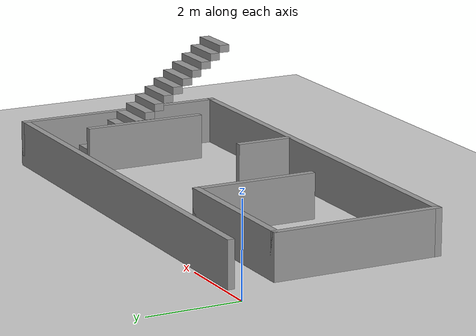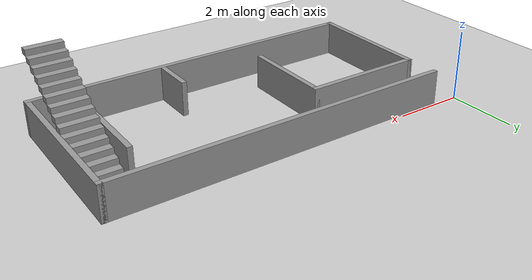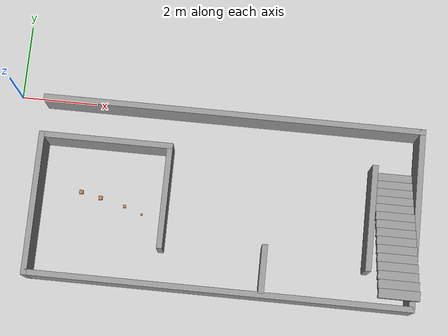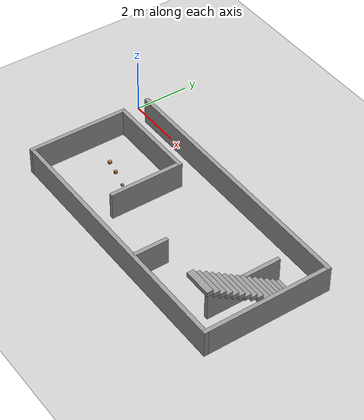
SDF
<sdf version="1.7">
 <world name="default">
  <light name="sun" type="directional">
   <pose>0 0 10 0 -0 0</pose>
   <diffuse>0.8 0.8 0.8 1</diffuse>
   <specular>0.2 0.2 0.2 1</specular>
   <attenuation>
    <range>1000</range>
    <constant>0.9</constant>
    <linear>0.01</linear>
    <quadratic>0.001</quadratic>
   </attenuation>
   <direction>-0.5 0.1 -0.9</direction>
   <spot><inner_angle>0</inner_angle><outer_angle>0</outer_angle><falloff>0</falloff></spot>
  </light>
  <model name="ground_plane">
   <static>1</static>
   <link name="link">
    <collision name="collision">
     <geometry><plane><normal>0 0 1</normal><size>100 100</size></plane></geometry>
     <surface>
      <contact><collide_bitmask>65535</collide_bitmask></contact>
      <friction><ode><mu>100</mu><mu2>50</mu2></ode></friction>
     </surface>
    </collision>
    <visual name="visual">
     <cast_shadows>0</cast_shadows>
     <geometry><plane><normal>0 0 1</normal><size>100 100</size></plane></geometry>
     <material>
      <script><uri>file://media/materials/scripts/gazebo.material</uri><name>Gazebo/Grey</name></script>
     </material>
    </visual>
   </link>
  </model>
  <gravity>0 0 -9.8</gravity>
  <magnetic_field>6e-06 2.3e-05 -4.2e-05</magnetic_field>
  <atmosphere type="adiabatic"/>
  <physics type="ode">
   <max_step_size>0.001</max_step_size>
   <real_time_factor>1</real_time_factor>
   <real_time_update_rate>1000</real_time_update_rate>
  </physics>
  <scene><ambient>0.4 0.4 0.4 1</ambient><background>0.7 0.7 0.7 1</background><shadows>1</shadows></scene>
  <spherical_coordinates>
   <surface_model>EARTH_WGS84</surface_model>
   <latitude_deg>0</latitude_deg>
   <longitude_deg>0</longitude_deg>
   <elevation>0</elevation>
   <heading_deg>0</heading_deg>
  </spherical_coordinates>
  <model name="building">
   <pose>5.72937 -2.10961 0 0 -0 0</pose>
   <link name="Stairs_0">
    <visual name="Stairs_0_Visual_0">
     <pose>4.35858 0.835559 0.083333 0 -0 0</pose>
     <geometry><box><size>1 0.233333 0.166667</size></box></geometry>
     <material>
      <script><uri>file://media/materials/scripts/gazebo.material</uri><name>Gazebo/Grey</name></script>
      <ambient>1 1 1 1</ambient>
     </material>
     <meta><layer>0</layer></meta>
    </visual>
    <collision name="Stairs_0_Collision_0">
     <geometry><box><size>1 0.233333 0.166667</size></box></geometry>
     <pose>4.35858 0.835559 0.083333 0 -0 0</pose>
    </collision>
    <visual name="Stairs_0_Visual_1">
     <pose>4.35858 0.602225 0.25 0 -0 0</pose>
     <geometry><box><size>1 0.233333 0.166667</size></box></geometry>
     <material>
      <script><uri>file://media/materials/scripts/gazebo.material</uri><name>Gazebo/Grey</name></script>
      <ambient>1 1 1 1</ambient>
     </material>
     <meta><layer>0</layer></meta>
    </visual>
    <collision name="Stairs_0_Collision_1">
     <geometry><box><size>1 0.233333 0.166667</size></box></geometry>
     <pose>4.35858 0.602225 0.25 0 -0 0</pose>
    </collision>
    <visual name="Stairs_0_Visual_2">
     <pose>4.35858 0.368892 0.416667 0 -0 0</pose>
     <geometry><box><size>1 0.233333 0.166667</size></box></geometry>
     <material>
      <script><uri>file://media/materials/scripts/gazebo.material</uri><name>Gazebo/Grey</name></script>
      <ambient>1 1 1 1</ambient>
     </material>
     <meta><layer>0</layer></meta>
    </visual>
    <collision name="Stairs_0_Collision_2">
     <geometry><box><size>1 0.233333 0.166667</size></box></geometry>
     <pose>4.35858 0.368892 0.416667 0 -0 0</pose>
    </collision>
    <visual name="Stairs_0_Visual_3">
     <pose>4.35858 0.135559 0.583333 0 -0 0</pose>
     <geometry><box><size>1 0.233333 0.166667</size></box></geometry>
     <material>
      <script><uri>file://media/materials/scripts/gazebo.material</uri><name>Gazebo/Grey</name></script>
      <ambient>1 1 1 1</ambient>
     </material>
     <meta><layer>0</layer></meta>
    </visual>
    <collision name="Stairs_0_Collision_3">
     <geometry><box><size>1 0.233333 0.166667</size></box></geometry>
     <pose>4.35858 0.135559 0.583333 0 -0 0</pose>
    </collision>
    <visual name="Stairs_0_Visual_4">
     <pose>4.35858 -0.097775 0.75 0 -0 0</pose>
     <geometry><box><size>1 0.233333 0.166667</size></box></geometry>
     <material>
      <script><uri>file://media/materials/scripts/gazebo.material</uri><name>Gazebo/Grey</name></script>
      <ambient>1 1 1 1</ambient>
     </material>
     <meta><layer>0</layer></meta>
    </visual>
    <collision name="Stairs_0_Collision_4">
     <geometry><box><size>1 0.233333 0.166667</size></box></geometry>
     <pose>4.35858 -0.097775 0.75 0 -0 0</pose>
    </collision>
    <visual name="Stairs_0_Visual_5">
     <pose>4.35858 -0.331108 0.916667 0 -0 0</pose>
     <geometry><box><size>1 0.233333 0.166667</size></box></geometry>
     <material>
      <script><uri>file://media/materials/scripts/gazebo.material</uri><name>Gazebo/Grey</name></script>
      <ambient>1 1 1 1</ambient>
     </material>
     <meta><layer>0</layer></meta>
    </visual>
    <collision name="Stairs_0_Collision_5">
     <geometry><box><size>1 0.233333 0.166667</size></box></geometry>
     <pose>4.35858 -0.331108 0.916667 0 -0 0</pose>
    </collision>
    <visual name="Stairs_0_Visual_6">
     <pose>4.35858 -0.564441 1.08333 0 -0 0</pose>
     <geometry><box><size>1 0.233333 0.166667</size></box></geometry>
     <material>
      <script><uri>file://media/materials/scripts/gazebo.material</uri><name>Gazebo/Grey</name></script>
      <ambient>1 1 1 1</ambient>
     </material>
     <meta><layer>0</layer></meta>
    </visual>
    <collision name="Stairs_0_Collision_6">
     <geometry><box><size>1 0.233333 0.166667</size></box></geometry>
     <pose>4.35858 -0.564441 1.08333 0 -0 0</pose>
    </collision>
    <visual name="Stairs_0_Visual_7">
     <pose>4.35858 -0.797775 1.25 0 -0 0</pose>
     <geometry><box><size>1 0.233333 0.166667</size></box></geometry>
     <material>
      <script><uri>file://media/materials/scripts/gazebo.material</uri><name>Gazebo/Grey</name></script>
      <ambient>1 1 1 1</ambient>
     </material>
     <meta><layer>0</layer></meta>
    </visual>
    <collision name="Stairs_0_Collision_7">
     <geometry><box><size>1 0.233333 0.166667</size></box></geometry>
     <pose>4.35858 -0.797775 1.25 0 -0 0</pose>
    </collision>
    <visual name="Stairs_0_Visual_8">
     <pose>4.35858 -1.03111 1.41667 0 -0 0</pose>
     <geometry><box><size>1 0.233333 0.166667</size></box></geometry>
     <material>
      <script><uri>file://media/materials/scripts/gazebo.material</uri><name>Gazebo/Grey</name></script>
      <ambient>1 1 1 1</ambient>
     </material>
     <meta><layer>0</layer></meta>
    </visual>
    <collision name="Stairs_0_Collision_8">
     <geometry><box><size>1 0.233333 0.166667</size></box></geometry>
     <pose>4.35858 -1.03111 1.41667 0 -0 0</pose>
    </collision>
    <visual name="Stairs_0_Visual_9">
     <pose>4.35858 -1.26444 1.58333 0 -0 0</pose>
     <geometry><box><size>1 0.233333 0.166667</size></box></geometry>
     <material>
      <script><uri>file://media/materials/scripts/gazebo.material</uri><name>Gazebo/Grey</name></script>
      <ambient>1 1 1 1</ambient>
     </material>
     <meta><layer>0</layer></meta>
    </visual>
    <collision name="Stairs_0_Collision_9">
     <geometry><box><size>1 0.233333 0.166667</size></box></geometry>
     <pose>4.35858 -1.26444 1.58333 0 -0 0</pose>
    </collision>
    <visual name="Stairs_0_Visual_10">
     <pose>4.35858 -1.49778 1.75 0 -0 0</pose>
     <geometry><box><size>1 0.233333 0.166667</size></box></geometry>
     <material>
      <script><uri>file://media/materials/scripts/gazebo.material</uri><name>Gazebo/Grey</name></script>
      <ambient>1 1 1 1</ambient>
     </material>
     <meta><layer>0</layer></meta>
    </visual>
    <collision name="Stairs_0_Collision_10">
     <geometry><box><size>1 0.233333 0.166667</size></box></geometry>
     <pose>4.35858 -1.49778 1.75 0 -0 0</pose>
    </collision>
    <visual name="Stairs_0_Visual_11">
     <pose>4.35858 -1.73111 1.91667 0 -0 0</pose>
     <geometry><box><size>1 0.233333 0.166667</size></box></geometry>
     <material>
      <script><uri>file://media/materials/scripts/gazebo.material</uri><name>Gazebo/Grey</name></script>
      <ambient>1 1 1 1</ambient>
     </material>
     <meta><layer>0</layer></meta>
    </visual>
    <collision name="Stairs_0_Collision_11">
     <geometry><box><size>1 0.233333 0.166667</size></box></geometry>
     <pose>4.35858 -1.73111 1.91667 0 -0 0</pose>
    </collision>
    <visual name="Stairs_0_Visual_12">
     <pose>4.35858 -1.96444 2.08333 0 -0 0</pose>
     <geometry><box><size>1 0.233333 0.166667</size></box></geometry>
     <material>
      <script><uri>file://media/materials/scripts/gazebo.material</uri><name>Gazebo/Grey</name></script>
      <ambient>1 1 1 1</ambient>
     </material>
     <meta><layer>0</layer></meta>
    </visual>
    <collision name="Stairs_0_Collision_12">
     <geometry><box><size>1 0.233333 0.166667</size></box></geometry>
     <pose>4.35858 -1.96444 2.08333 0 -0 0</pose>
    </collision>
    <visual name="Stairs_0_Visual_13">
     <pose>4.35858 -2.19778 2.25 0 -0 0</pose>
     <geometry><box><size>1 0.233333 0.166667</size></box></geometry>
     <material>
      <script><uri>file://media/materials/scripts/gazebo.material</uri><name>Gazebo/Grey</name></script>
      <ambient>1 1 1 1</ambient>
     </material>
     <meta><layer>0</layer></meta>
    </visual>
    <collision name="Stairs_0_Collision_13">
     <geometry><box><size>1 0.233333 0.166667</size></box></geometry>
     <pose>4.35858 -2.19778 2.25 0 -0 0</pose>
    </collision>
    <visual name="Stairs_0_Visual_14">
     <pose>4.35858 -2.43111 2.41667 0 -0 0</pose>
     <geometry><box><size>1 0.233333 0.166667</size></box></geometry>
     <material>
      <script><uri>file://media/materials/scripts/gazebo.material</uri><name>Gazebo/Grey</name></script>
      <ambient>1 1 1 1</ambient>
     </material>
     <meta><layer>0</layer></meta>
    </visual>
    <collision name="Stairs_0_Collision_14">
     <geometry><box><size>1 0.233333 0.166667</size></box></geometry>
     <pose>4.35858 -2.43111 2.41667 0 -0 0</pose>
    </collision>
   </link>
   <link name="Wall_0">
    <collision name="Wall_0_Collision">
     <geometry><box><size>10 0.15 1</size></box></geometry>
     <pose>0 0 0.5 0 -0 0</pose>
    </collision>
    <visual name="Wall_0_Visual">
     <pose>0 0 0.5 0 -0 0</pose>
     <geometry><box><size>10 0.15 1</size></box></geometry>
     <material>
      <script><uri>file://media/materials/scripts/gazebo.material</uri><name>Gazebo/Grey</name></script>
      <ambient>1 1 1 1</ambient>
     </material>
     <meta><layer>0</layer></meta>
    </visual>
    <pose>-0 1.9665 0 0 -0 0</pose>
   </link>
   <link name="Wall_1">
    <collision name="Wall_1_Collision">
     <geometry><box><size>4.75 0.15 1</size></box></geometry>
     <pose>0 0 0.5 0 -0 0</pose>
    </collision>
    <visual name="Wall_1_Visual">
     <pose>0 0 0.5 0 -0 0</pose>
     <geometry><box><size>4.75 0.15 1</size></box></geometry>
     <material>
      <script><uri>file://media/materials/scripts/gazebo.material</uri><name>Gazebo/Grey</name></script>
      <ambient>1 1 1 1</ambient>
     </material>
     <meta><layer>0</layer></meta>
    </visual>
    <pose>4.925 -0.3335 0 0 -0 -1.5708</pose>
   </link>
   <link name="Wall_10">
    <collision name="Wall_10_Collision">
     <geometry><box><size>1.25 0.15 1</size></box></geometry>
     <pose>0 0 0.5 0 -0 0</pose>
    </collision>
    <visual name="Wall_10_Visual">
     <pose>0 0 0.5 0 -0 0</pose>
     <geometry><box><size>1.25 0.15 1</size></box></geometry>
     <material>
      <script><uri>file://media/materials/scripts/gazebo.material</uri><name>Gazebo/Grey</name></script>
      <ambient>1 1 1 1</ambient>
     </material>
     <meta><layer>0</layer></meta>
    </visual>
    <pose>1.105 -1.9675 0 0 -0 1.5708</pose>
   </link>
   <link name="Wall_2">
    <collision name="Wall_2_Collision">
     <geometry><box><size>10 0.15 1</size></box></geometry>
     <pose>0 0 0.5 0 -0 0</pose>
    </collision>
    <visual name="Wall_2_Visual">
     <pose>0 0 0.5 0 -0 0</pose>
     <geometry><box><size>10 0.15 1</size></box></geometry>
     <material>
      <script><uri>file://media/materials/scripts/gazebo.material</uri><name>Gazebo/Grey</name></script>
      <ambient>1 1 1 1</ambient>
     </material>
     <meta><layer>0</layer></meta>
    </visual>
    <pose>-0 -2.6335 0 0 -0 3.14159</pose>
   </link>
   <link name="Wall_3">
    <collision name="Wall_3_Collision">
     <geometry><box><size>3.75 0.15 1</size></box></geometry>
     <pose>0 0 0.5 0 -0 0</pose>
    </collision>
    <visual name="Wall_3_Visual">
     <pose>0 0 0.5 0 -0 0</pose>
     <geometry><box><size>3.75 0.15 1</size></box></geometry>
     <material>
      <script><uri>file://media/materials/scripts/gazebo.material</uri><name>Gazebo/Grey</name></script>
      <ambient>1 1 1 1</ambient>
     </material>
     <meta><layer>0</layer></meta>
    </visual>
    <pose>-4.925 -0.8335 0 0 -0 1.5708</pose>
   </link>
   <link name="Wall_4">
    <collision name="Wall_4_Collision">
     <geometry><box><size>3.5 0.15 1</size></box></geometry>
     <pose>0 0 0.5 0 -0 0</pose>
    </collision>
    <visual name="Wall_4_Visual">
     <pose>0 0 0.5 0 -0 0</pose>
     <geometry><box><size>3.5 0.15 1</size></box></geometry>
     <material>
      <script><uri>file://media/materials/scripts/gazebo.material</uri><name>Gazebo/Grey</name></script>
      <ambient>1 1 1 1</ambient>
     </material>
     <meta><layer>0</layer></meta>
    </visual>
    <pose>-3.25 0.9665 0 0 -0 0</pose>
   </link>
   <link name="Wall_5">
    <collision name="Wall_5_Collision">
     <geometry><box><size>2.75 0.15 1</size></box></geometry>
     <pose>0 0 0.5 0 -0 0</pose>
    </collision>
    <visual name="Wall_5_Visual">
     <pose>0 0 0.5 0 -0 0</pose>
     <geometry><box><size>2.75 0.15 1</size></box></geometry>
     <material>
      <script><uri>file://media/materials/scripts/gazebo.material</uri><name>Gazebo/Grey</name></script>
      <ambient>1 1 1 1</ambient>
     </material>
     <meta><layer>0</layer></meta>
    </visual>
    <pose>-1.575 -0.3335 0 0 -0 -1.5708</pose>
   </link>
   <link name="Wall_8">
    <collision name="Wall_8_Collision">
     <geometry><box><size>2.75 0.15 1</size></box></geometry>
     <pose>0 0 0.5 0 -0 0</pose>
    </collision>
    <visual name="Wall_8_Visual">
     <pose>0 0 0.5 0 -0 0</pose>
     <geometry><box><size>2.75 0.15 1</size></box></geometry>
     <material>
      <script><uri>file://media/materials/scripts/gazebo.material</uri><name>Gazebo/Grey</name></script>
      <ambient>1 1 1 1</ambient>
     </material>
     <meta><layer>0</layer></meta>
    </visual>
    <pose>3.763 -0.3945 0 0 -0 1.5708</pose>
   </link>
   <static>1</static>
  </model>
  <model name="wood_cube_10cm">
   <link name="link">
    <pose>0 0 0.05 0 -0 0</pose>
    <inertial>
     <mass>0.5167</mass>
     <inertia>
      <ixx>0.000861167</ixx>
      <ixy>0</ixy>
      <ixz>0</ixz>
      <iyy>0.000861167</iyy>
      <iyz>0</iyz>
      <izz>0.000861167</izz>
     </inertia>
    </inertial>
    <collision name="collision">
     <geometry><box><size>0.1 0.1 0.1</size></box></geometry>
     <surface>
      <contact>
       <poissons_ratio>0.347</poissons_ratio>
       <elastic_modulus>8.8e+09</elastic_modulus>
       <ode><kp>100000</kp><kd>100</kd><max_vel>100</max_vel><min_depth>0.001</min_depth></ode>
      </contact>
      <friction>
       <torsional>
        <coefficient>1</coefficient>
        <use_patch_radius>0</use_patch_radius>
        <surface_radius>0.01</surface_radius>
       </torsional>
      </friction>
     </surface>
    </collision>
    <visual name="visual">
     <geometry><box><size>0.1 0.1 0.1</size></box></geometry>
     <material>
      <script><uri>file://media/materials/scripts/gazebo.material</uri><name>Gazebo/Wood</name></script>
     </material>
    </visual>
   </link>
   <pose>1.88298 -2.41947 -0.001013 0 -0 0</pose>
  </model>
  <model name="wood_cube_10cm_0">
   <link name="link">
    <pose>0 0 0.05 0 -0 0</pose>
    <inertial>
     <mass>0.5167</mass>
     <inertia>
      <ixx>0.000861167</ixx>
      <ixy>0</ixy>
      <ixz>0</ixz>
      <iyy>0.000861167</iyy>
      <iyz>0</iyz>
      <izz>0.000861167</izz>
     </inertia>
    </inertial>
    <collision name="collision">
     <geometry><box><size>0.1 0.1 0.1</size></box></geometry>
     <surface>
      <contact>
       <poissons_ratio>0.347</poissons_ratio>
       <elastic_modulus>8.8e+09</elastic_modulus>
       <ode><kp>100000</kp><kd>100</kd><max_vel>100</max_vel><min_depth>0.001</min_depth></ode>
      </contact>
      <friction>
       <torsional>
        <coefficient>1</coefficient>
        <use_patch_radius>0</use_patch_radius>
        <surface_radius>0.01</surface_radius>
       </torsional>
      </friction>
     </surface>
    </collision>
    <visual name="visual">
     <geometry><box><size>0.1 0.1 0.1</size></box></geometry>
     <material>
      <script><uri>file://media/materials/scripts/gazebo.material</uri><name>Gazebo/Wood</name></script>
     </material>
    </visual>
   </link>
   <pose>2.41113 -2.52753 -0.001013 0 -0 0</pose>
  </model>
  <model name="wood_cube_7_5cm">
   <link name="link">
    <pose>0 0 0.0375 0 -0 0</pose>
    <inertial>
     <mass>0.2249</mass>
     <inertia>
      <ixx>0.000210844</ixx>
      <ixy>0</ixy>
      <ixz>0</ixz>
      <iyy>0.000210844</iyy>
      <iyz>0</iyz>
      <izz>0.000210844</izz>
     </inertia>
    </inertial>
    <collision name="collision">
     <geometry><box><size>0.075 0.075 0.075</size></box></geometry>
     <surface>
      <contact>
       <poissons_ratio>0.347</poissons_ratio>
       <elastic_modulus>8.8e+09</elastic_modulus>
       <ode><kp>100000</kp><kd>100</kd><max_vel>100</max_vel><min_depth>0.001</min_depth></ode>
      </contact>
      <friction>
       <torsional>
        <coefficient>1</coefficient>
        <use_patch_radius>0</use_patch_radius>
        <surface_radius>0.01</surface_radius>
       </torsional>
      </friction>
     </surface>
    </collision>
    <visual name="visual">
     <geometry><box><size>0.075 0.075 0.075</size></box></geometry>
     <material>
      <script><uri>file://media/materials/scripts/gazebo.material</uri><name>Gazebo/Wood</name></script>
     </material>
    </visual>
   </link>
   <pose>3.06961 -2.69186 -0.001005 0 -0 0</pose>
  </model>
  <model name="wood_cube_5cm">
   <link name="link">
    <pose>0 0 0.025 0 -0 0</pose>
    <inertial>
     <mass>0.0565</mass>
     <inertia>
      <ixx>2.35417e-05</ixx>
      <ixy>0</ixy>
      <ixz>0</ixz>
      <iyy>2.35417e-05</iyy>
      <iyz>0</iyz>
      <izz>2.35417e-05</izz>
     </inertia>
    </inertial>
    <collision name="collision">
     <geometry><box><size>0.05 0.05 0.05</size></box></geometry>
     <surface>
      <contact>
       <poissons_ratio>0.347</poissons_ratio>
       <elastic_modulus>8.8e+09</elastic_modulus>
       <ode><kp>100000</kp><kd>1</kd><max_vel>1</max_vel><min_depth>0.001</min_depth></ode>
      </contact>
      <friction>
       <torsional>
        <coefficient>1</coefficient>
        <use_patch_radius>0</use_patch_radius>
        <surface_radius>0.05</surface_radius>
       </torsional>
      </friction>
     </surface>
    </collision>
    <visual name="visual">
     <geometry><box><size>0.05 0.05 0.05</size></box></geometry>
     <material>
      <script><uri>file://media/materials/scripts/gazebo.material</uri><name>Gazebo/Wood</name></script>
     </material>
    </visual>
   </link>
   <pose>3.53999 -2.85919 -0.001001 0 -0 0</pose>
  </model>
 </world>
</sdf>
